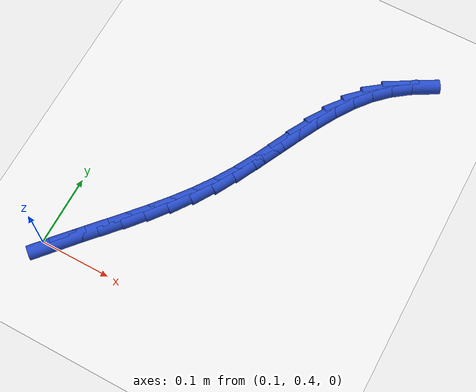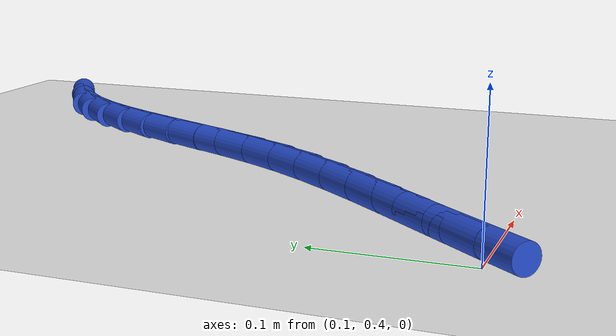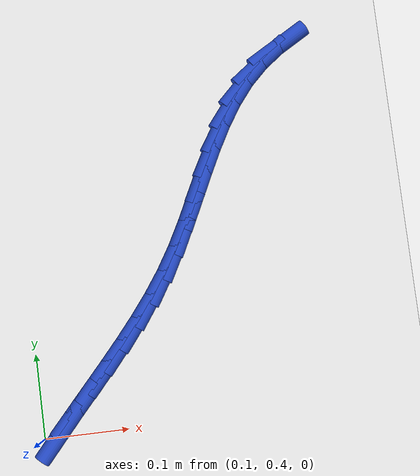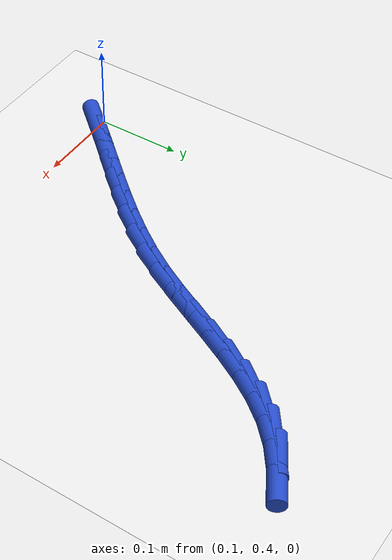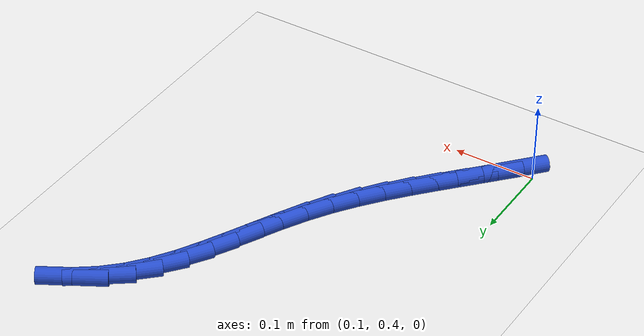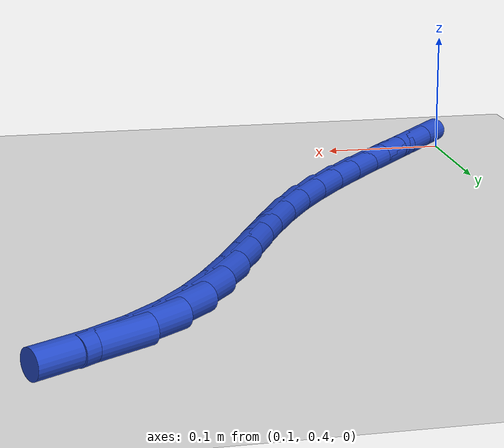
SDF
<sdf version="1.6">
 <world name="default">
  <model name="ground_plane">
   <static>1</static>
   <link name="link">
    <collision name="collision">
     <geometry><plane><normal>0 0 1</normal><size>100 100</size></plane></geometry>
     <surface><friction><ode><mu>100</mu><mu2>50</mu2></ode></friction></surface>
    </collision>
    <visual name="visual">
     <cast_shadows>0</cast_shadows>
     <geometry><plane><normal>0 0 1</normal><size>100 100</size></plane></geometry>
     <material>
      <script><uri>file://media/materials/scripts/gazebo.material</uri><name>Gazebo/WhiteGlow</name></script>
     </material>
    </visual>
   </link>
  </model>
  <model name="line">
   <link name="link_14">
    <pose>0.12121474988525856 0.40620136257940076 0.01 0 1.57 0.8510073917757544</pose>
    <collision name="collision">
     <geometry><cylinder><radius>0.01</radius><length>0.08</length></cylinder></geometry>
    </collision>
    <visual name="visual">
     <material>
      <script><name>Gazebo/Blue</name><uri>file://media/materials/scripts/gazebo.material</uri></script>
     </material>
     <geometry><cylinder><radius>0.01</radius><length>0.08</length></cylinder></geometry>
    </visual>
   </link>
   <link name="link_15">
    <pose>0.14182553745130963 0.42971101909366144 0.01 0 1.57 0.8374688288999654</pose>
    <collision name="collision">
     <geometry><cylinder><radius>0.01</radius><length>0.08</length></cylinder></geometry>
    </collision>
    <visual name="visual">
     <material>
      <script><name>Gazebo/Blue</name><uri>file://media/materials/scripts/gazebo.material</uri></script>
     </material>
     <geometry><cylinder><radius>0.01</radius><length>0.08</length></cylinder></geometry>
    </visual>
   </link>
   <link name="link_16">
    <pose>0.16292903234590386 0.45313519733935437 0.01 0 1.57 0.8368254981185318</pose>
    <collision name="collision">
     <geometry><cylinder><radius>0.01</radius><length>0.08</length></cylinder></geometry>
    </collision>
    <visual name="visual">
     <material>
      <script><name>Gazebo/Blue</name><uri>file://media/materials/scripts/gazebo.material</uri></script>
     </material>
     <geometry><cylinder><radius>0.01</radius><length>0.08</length></cylinder></geometry>
    </visual>
   </link>
   <link name="link_17">
    <pose>0.18418010945080346 0.4766926936214669 0.01 0 1.57 0.8488333265812975</pose>
    <collision name="collision">
     <geometry><cylinder><radius>0.01</radius><length>0.08</length></cylinder></geometry>
    </collision>
    <visual name="visual">
     <material>
      <script><name>Gazebo/Blue</name><uri>file://media/materials/scripts/gazebo.material</uri></script>
     </material>
     <geometry><cylinder><radius>0.01</radius><length>0.08</length></cylinder></geometry>
    </visual>
   </link>
   <link name="link_18">
    <pose>0.20523364364777066 0.5006023042449869 0.01 0 1.57 0.8734017169391491</pose>
    <collision name="collision">
     <geometry><cylinder><radius>0.01</radius><length>0.08</length></cylinder></geometry>
    </collision>
    <visual name="visual">
     <material>
      <script><name>Gazebo/Blue</name><uri>file://media/materials/scripts/gazebo.material</uri></script>
     </material>
     <geometry><cylinder><radius>0.01</radius><length>0.08</length></cylinder></geometry>
    </visual>
   </link>
   <link name="link_19">
    <pose>0.22574450981856753 0.5250828255149016 0.01 0 1.57 0.9105315166691059</pose>
    <collision name="collision">
     <geometry><cylinder><radius>0.01</radius><length>0.08</length></cylinder></geometry>
    </collision>
    <visual name="visual">
     <material>
      <script><name>Gazebo/Blue</name><uri>file://media/materials/scripts/gazebo.material</uri></script>
     </material>
     <geometry><cylinder><radius>0.01</radius><length>0.08</length></cylinder></geometry>
    </visual>
   </link>
   <link name="link_20">
    <pose>0.24536758284495633 0.5503530537361989 0.01 0 1.57 0.960196978948396</pose>
    <collision name="collision">
     <geometry><cylinder><radius>0.01</radius><length>0.08</length></cylinder></geometry>
    </collision>
    <visual name="visual">
     <material>
      <script><name>Gazebo/Blue</name><uri>file://media/materials/scripts/gazebo.material</uri></script>
     </material>
     <geometry><cylinder><radius>0.01</radius><length>0.08</length></cylinder></geometry>
    </visual>
   </link>
   <link name="link_21">
    <pose>0.26375773760869914 0.576631785213866 0.01 0 1.57 1.0216188614000867</pose>
    <collision name="collision">
     <geometry><cylinder><radius>0.01</radius><length>0.08</length></cylinder></geometry>
    </collision>
    <visual name="visual">
     <material>
      <script><name>Gazebo/Blue</name><uri>file://media/materials/scripts/gazebo.material</uri></script>
     </material>
     <geometry><cylinder><radius>0.01</radius><length>0.08</length></cylinder></geometry>
    </visual>
   </link>
   <link name="link_22">
    <pose>0.280583520935067 0.6041260605972684 0.01 0 1.57 1.0779718395992874</pose>
    <collision name="collision">
     <geometry><cylinder><radius>0.01</radius><length>0.08</length></cylinder></geometry>
    </collision>
    <visual name="visual">
     <material>
      <script><name>Gazebo/Blue</name><uri>file://media/materials/scripts/gazebo.material</uri></script>
     </material>
     <geometry><cylinder><radius>0.01</radius><length>0.08</length></cylinder></geometry>
    </visual>
   </link>
   <link name="link_23">
    <pose>0.2959232772794741 0.6326905609892598 0.01 0 1.57 1.110982557753976</pose>
    <collision name="collision">
     <geometry><cylinder><radius>0.01</radius><length>0.08</length></cylinder></geometry>
    </collision>
    <visual name="visual">
     <material>
      <script><name>Gazebo/Blue</name><uri>file://media/materials/scripts/gazebo.material</uri></script>
     </material>
     <geometry><cylinder><radius>0.01</radius><length>0.08</length></cylinder></geometry>
    </visual>
   </link>
   <link name="link_24">
    <pose>0.3103263667475937 0.6617749703704134 0.01 0 1.57 1.1202969607023132</pose>
    <collision name="collision">
     <geometry><cylinder><radius>0.01</radius><length>0.08</length></cylinder></geometry>
    </collision>
    <visual name="visual">
     <material>
      <script><name>Gazebo/Blue</name><uri>file://media/materials/scripts/gazebo.material</uri></script>
     </material>
     <geometry><cylinder><radius>0.01</radius><length>0.08</length></cylinder></geometry>
    </visual>
   </link>
   <link name="link_25">
    <pose>0.32436813944007176 0.6908066255377934 0.01 0 1.57 1.1056659999793053</pose>
    <collision name="collision">
     <geometry><cylinder><radius>0.01</radius><length>0.08</length></cylinder></geometry>
    </collision>
    <visual name="visual">
     <material>
      <script><name>Gazebo/Blue</name><uri>file://media/materials/scripts/gazebo.material</uri></script>
     </material>
     <geometry><cylinder><radius>0.01</radius><length>0.08</length></cylinder></geometry>
    </visual>
   </link>
   <link name="link_26">
    <pose>0.3386239454575542 0.719212863288464 0.01 0 1.57 1.06567870682173</pose>
    <collision name="collision">
     <geometry><cylinder><radius>0.01</radius><length>0.08</length></cylinder></geometry>
    </collision>
    <visual name="visual">
     <material>
      <script><name>Gazebo/Blue</name><uri>file://media/materials/scripts/gazebo.material</uri></script>
     </material>
     <geometry><cylinder><radius>0.01</radius><length>0.08</length></cylinder></geometry>
    </visual>
   </link>
   <link name="link_27">
    <pose>0.3536691349006872 0.7464210204194895 0.01 0 1.57 0.9978665875913788</pose>
    <collision name="collision">
     <geometry><cylinder><radius>0.01</radius><length>0.08</length></cylinder></geometry>
    </collision>
    <visual name="visual">
     <material>
      <script><name>Gazebo/Blue</name><uri>file://media/materials/scripts/gazebo.material</uri></script>
     </material>
     <geometry><cylinder><radius>0.01</radius><length>0.08</length></cylinder></geometry>
    </visual>
   </link>
   <link name="link_28">
    <pose>0.37007905787011636 0.7718584337279338 0.01 0 1.57 0.8993697789487483</pose>
    <collision name="collision">
     <geometry><cylinder><radius>0.01</radius><length>0.08</length></cylinder></geometry>
    </collision>
    <visual name="visual">
     <material>
      <script><name>Gazebo/Blue</name><uri>file://media/materials/scripts/gazebo.material</uri></script>
     </material>
     <geometry><cylinder><radius>0.01</radius><length>0.08</length></cylinder></geometry>
    </visual>
   </link>
   <link name="link_29">
    <pose>0.38842906446648784 0.7949524400108614 0.01 0 1.57 0.77045522675812</pose>
    <collision name="collision">
     <geometry><cylinder><radius>0.01</radius><length>0.08</length></cylinder></geometry>
    </collision>
    <visual name="visual">
     <material>
      <script><name>Gazebo/Blue</name><uri>file://media/materials/scripts/gazebo.material</uri></script>
     </material>
     <geometry><cylinder><radius>0.01</radius><length>0.08</length></cylinder></geometry>
    </visual>
   </link>
   <link name="link_30">
    <pose>0.409258775442597 0.8151687571339272 0.01 0 1.57 0.6385212311420206</pose>
    <collision name="collision">
     <geometry><cylinder><radius>0.01</radius><length>0.08</length></cylinder></geometry>
    </collision>
    <visual name="visual">
     <material>
      <script><name>Gazebo/Blue</name><uri>file://media/materials/scripts/gazebo.material</uri></script>
     </material>
     <geometry><cylinder><radius>0.01</radius><length>0.08</length></cylinder></geometry>
    </visual>
   </link>
   <link name="link_31">
    <pose>0.4326136926827654 0.8325038937922786 0.01 0 1.57 0.5258831245029496</pose>
    <collision name="collision">
     <geometry><cylinder><radius>0.01</radius><length>0.08</length></cylinder></geometry>
    </collision>
    <visual name="visual">
     <material>
      <script><name>Gazebo/Blue</name><uri>file://media/materials/scripts/gazebo.material</uri></script>
     </material>
     <geometry><cylinder><radius>0.01</radius><length>0.08</length></cylinder></geometry>
    </visual>
   </link>
  </model>
 </world>
</sdf>
